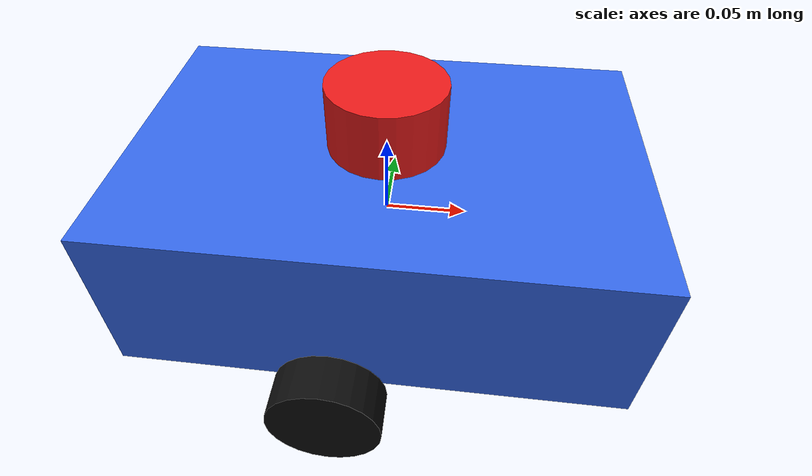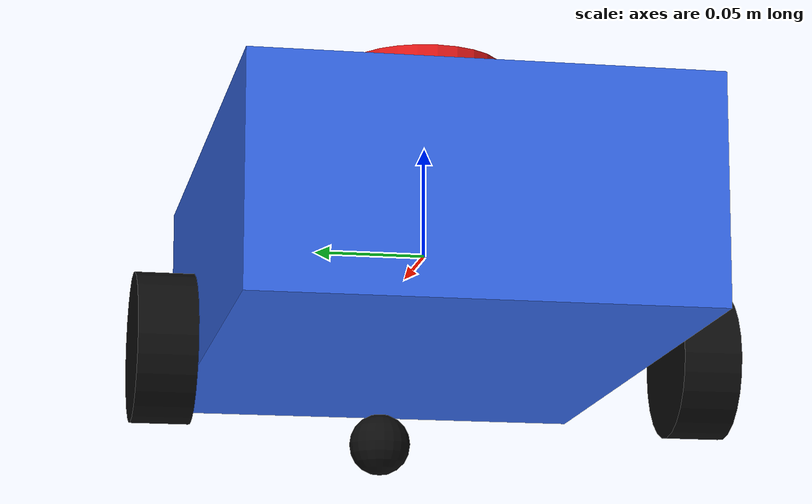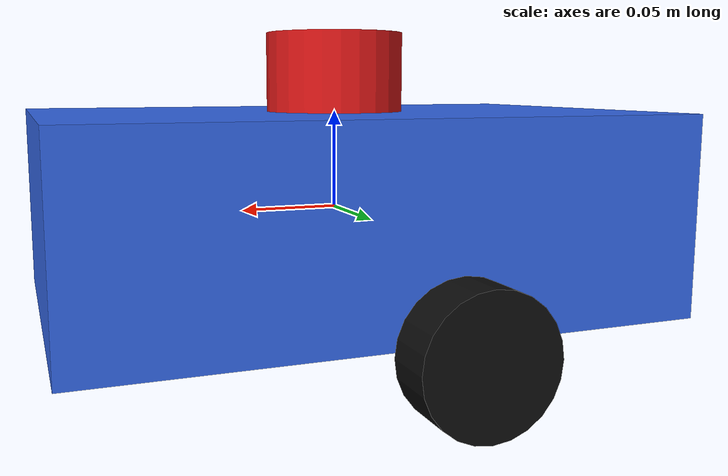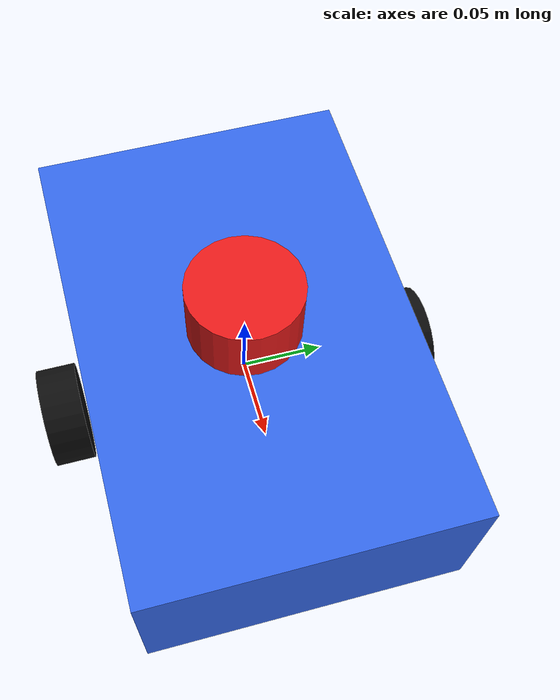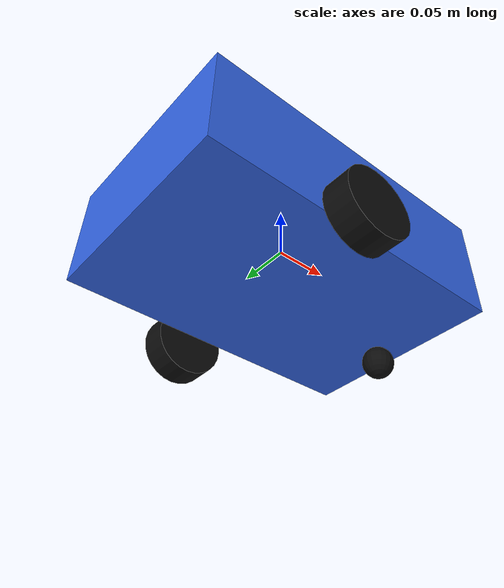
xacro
<?xml version="1.0"?>
<robot name="simple_diff_robot" xmlns:xacro="http://www.ros.org/wiki/xacro">

  <xacro:arg name="gazebo_plugins" default="true"/>
  <xacro:arg name="lidar_mount_height" default="0.07"/>

  <!--                  DIMENSIONS PARAMETERS                       -->

  <xacro:property name="body_length" value="0.30"/>   <!-- x axis -->
  <xacro:property name="body_width"  value="0.20"/>   <!-- y axis -->
  <xacro:property name="body_height" value="0.10"/>   <!-- z axis -->
  <xacro:property name="body_mass"   value="1.0"/>

  <xacro:property name="wheel_radius"     value="0.033"/>
  <xacro:property name="wheel_width"      value="0.026"/>
  <xacro:property name="wheel_mass"       value="0.2"/>
  <xacro:property name="wheel_separation" value="0.24"/>  <!-- distance between 2 wheels -->
  <xacro:property name="wheel_offset_x"   value="-0.02"/>
  <xacro:property name="wheel_z_offset"   value="${-(body_height/2)}"/>

  <xacro:property name="caster_radius"  value="0.015"/>
  <xacro:property name="caster_mass"    value="0.05"/>
  <xacro:property name="caster_offset_x" value="${body_length/2 - 0.03}"/> <!-- caster in the front -->

  <xacro:property name="lidar_radius" value="0.035"/>
  <xacro:property name="lidar_height" value="0.04"/>
  <xacro:property name="lidar_mass"   value="0.1"/>

  <!--             MATERIAL (Color display in RViz2)                -->
  <material name="blue"><color rgba="0.2 0.4 0.9 1.0"/></material>
  <material name="black"><color rgba="0.05 0.05 0.05 1.0"/></material>
  <material name="red"><color rgba="0.9 0.1 0.1 1.0"/></material>

  <!--                  BASE LINK - ROBOT BODY                      -->
  <link name="base_link">
    <visual>
      <origin xyz="0 0 0" rpy="0 0 0"/>
      <geometry>
        <box size="${body_length} ${body_width} ${body_height}"/>
      </geometry>
      <material name="blue"/>
    </visual>
    <collision>
      <origin xyz="0 0 0" rpy="0 0 0"/>
      <geometry>
        <box size="${body_length} ${body_width} ${body_height}"/>
      </geometry>
    </collision>
    <inertial>
      <mass value="${body_mass}"/>
        <inertia
            ixx="${body_mass * (body_width * body_width + body_height * body_height) / 12.0}"
            ixy="0"
            ixz="0"
            iyy="${body_mass * (body_length * body_length + body_height * body_height) / 12.0}"
            iyz="0"
            izz="${body_mass * (body_length * body_length + body_width * body_width) / 12.0}"
        />
    </inertial>
  </link>

  <!--                     MACRO: 1 DRIVE WHEEL                     -->
  <xacro:macro name="drive_wheel" params="prefix reflect">

    <link name="${prefix}_wheel_link">
      <visual>
        <origin xyz="0 0 0" rpy="1.570795 0 0"/>
        <geometry>
          <cylinder radius="${wheel_radius}" length="${wheel_width}"/>
        </geometry>
        <material name="black"/>
      </visual>
      <collision>
        <origin xyz="0 0 0" rpy="1.570795 0 0"/>
        <geometry>
          <cylinder radius="${wheel_radius}" length="${wheel_width}"/>
        </geometry>
      </collision>
      <inertial>
        <mass value="${wheel_mass}"/>
        <inertia ixx="0.0001" ixy="0" ixz="0" iyy="0.0001" iyz="0" izz="0.0001"/>
      </inertial>
    </link>

    <joint name="${prefix}_wheel_joint" type="continuous">
      <parent link="base_link"/>
      <child  link="${prefix}_wheel_link"/>
      <origin xyz="${wheel_offset_x} ${reflect * wheel_separation/2} ${wheel_z_offset}" rpy="0 0 0"/>
      <axis xyz="0 1 0"/>
      <limit effort="50000" velocity="30"/>
      <dynamics damping="1.0" friction="1.0"/>
    </joint>

  </xacro:macro>

  <xacro:drive_wheel prefix="left"  reflect="1"/>
  <xacro:drive_wheel prefix="right" reflect="-1"/>

  <!--                       CASTER WHEEL                           -->
  <link name="caster_link">
    <visual>
      <geometry><sphere radius="${caster_radius}"/></geometry>
      <material name="black"/>
    </visual>
    <collision>
      <geometry><sphere radius="${caster_radius}"/></geometry>
    </collision>
    <inertial>
      <mass value="${caster_mass}"/>
      <inertia ixx="0.00001" ixy="0" ixz="0" iyy="0.00001" iyz="0" izz="0.00001"/>
    </inertial>
  </link>

  <joint name="caster_joint" type="fixed">
    <parent link="base_link"/>
    <child  link="caster_link"/>
    <origin xyz="${caster_offset_x} 0 ${wheel_z_offset -wheel_radius + caster_radius}" rpy="0 0 0"/>
  </joint>

  <!--                           LIDAR LINK                         -->
  <link name="lidar_link">
    <visual>
      <geometry><cylinder radius="${lidar_radius}" length="${lidar_height}"/></geometry>
      <material name="red"/>
    </visual>
    <collision>
      <geometry><cylinder radius="${lidar_radius}" length="${lidar_height}"/></geometry>
    </collision>
    <inertial>
      <mass value="${lidar_mass}"/>
      <inertia ixx="0.0001" ixy="0" ixz="0" iyy="0.0001" iyz="0" izz="0.0001"/>
    </inertial>
  </link>

  <joint name="lidar_joint" type="fixed">
    <parent link="base_link"/>
    <child  link="lidar_link"/>
    <origin xyz="0 0 $(arg lidar_mount_height)" rpy="0 0 0"/>
  </joint>

  <xacro:if value="$(arg gazebo_plugins)">
    <xacro:include filename="robot.gazebo.xacro"/>
  </xacro:if>

</robot>
